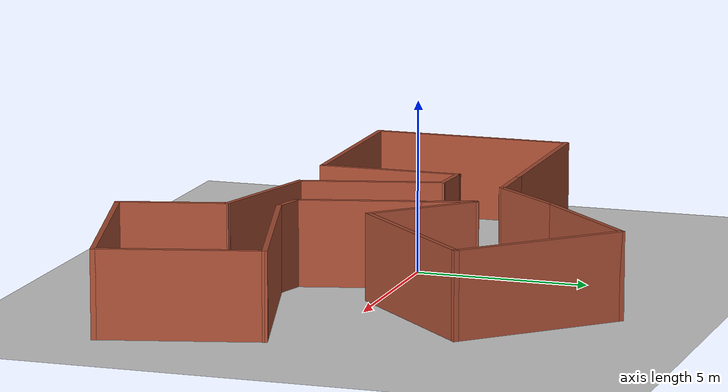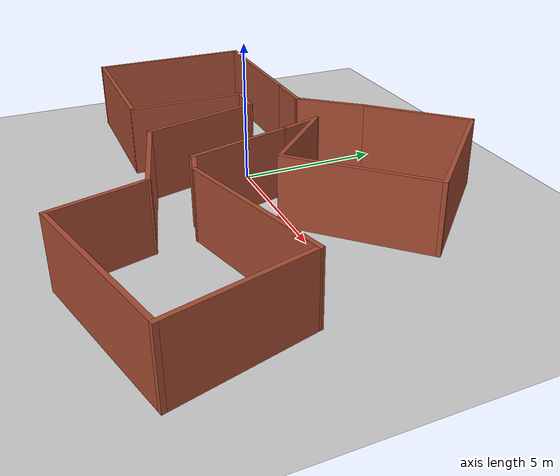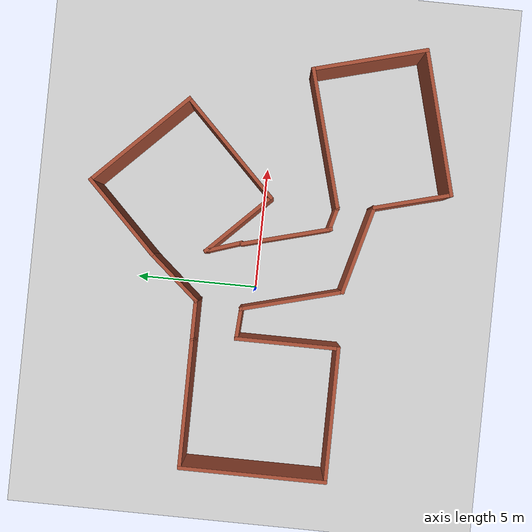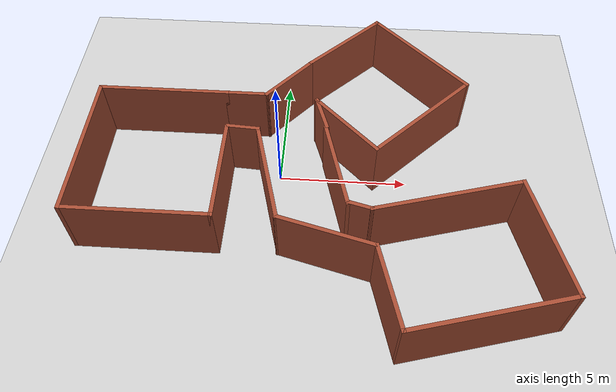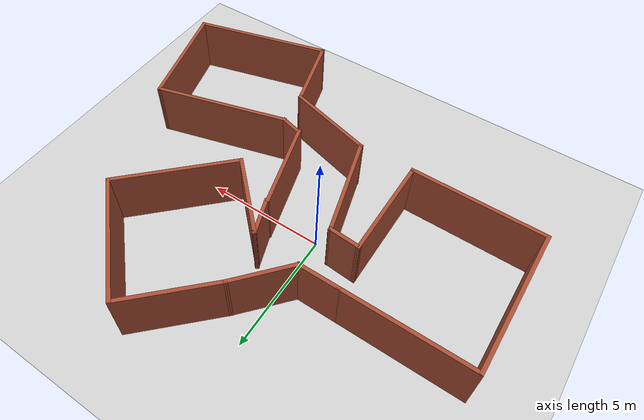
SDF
<sdf version="1.6">
 <world name="default">
  <light name="sun" type="directional">
   <pose>0 0 10 0 -0 0</pose>
   <diffuse>0.8 0.8 0.8 1</diffuse>
   <specular>0.2 0.2 0.2 1</specular>
   <attenuation>
    <range>1000</range>
    <constant>0.9</constant>
    <linear>0.01</linear>
    <quadratic>0.001</quadratic>
   </attenuation>
   <direction>-0.5 0.1 -0.9</direction>
  </light>
  <model name="ground_plane">
   <static>1</static>
   <link name="link">
    <collision name="collision">
     <geometry><plane><normal>0 0 1</normal><size>100 100</size></plane></geometry>
     <surface>
      <contact><collide_bitmask>65535</collide_bitmask></contact>
      <friction><ode><mu>100</mu><mu2>50</mu2></ode></friction>
     </surface>
    </collision>
    <visual name="visual">
     <cast_shadows>0</cast_shadows>
     <geometry><plane><normal>0 0 1</normal><size>100 100</size></plane></geometry>
     <material>
      <script><uri>file://media/materials/scripts/gazebo.material</uri><name>Gazebo/Grey</name></script>
     </material>
    </visual>
   </link>
  </model>
  <gravity>0 0 -9.8</gravity>
  <magnetic_field>6e-06 2.3e-05 -4.2e-05</magnetic_field>
  <atmosphere type="adiabatic"/>
  <physics name="default_physics" default="0" type="ode">
   <max_step_size>0.001</max_step_size>
   <real_time_factor>1</real_time_factor>
   <real_time_update_rate>1000</real_time_update_rate>
  </physics>
  <scene><ambient>0.4 0.4 0.4 1</ambient><background>0.7 0.7 0.7 1</background><shadows>1</shadows></scene>
  <spherical_coordinates>
   <surface_model>EARTH_WGS84</surface_model>
   <latitude_deg>0</latitude_deg>
   <longitude_deg>0</longitude_deg>
   <elevation>0</elevation>
   <heading_deg>0</heading_deg>
  </spherical_coordinates>
  <model name="Untitled">
   <pose>1.39873 -0.231194 0 0 -0 0</pose>
   <link name="Wall_30">
    <collision name="Wall_30_Collision">
     <geometry><box><size>6 0.15 2.5</size></box></geometry>
     <pose>0 0 1.25 0 -0 0</pose>
    </collision>
    <visual name="Wall_30_Visual">
     <pose>0 0 1.25 0 -0 0</pose>
     <geometry><box><size>6 0.15 2.5</size></box></geometry>
     <material>
      <script><uri>file://media/materials/scripts/gazebo.material</uri><name>Gazebo/Bricks</name></script>
      <ambient>1 1 1 1</ambient>
     </material>
     <meta><layer>0</layer></meta>
    </visual>
    <pose>-8.7786 -0.396693 0 0 0 -1.5708</pose>
   </link>
   <link name="Wall_31">
    <collision name="Wall_31_Collision">
     <geometry><box><size>5.5 0.15 2.5</size></box></geometry>
     <pose>0 0 1.25 0 -0 0</pose>
    </collision>
    <visual name="Wall_31_Visual">
     <pose>0 0 1.25 0 -0 0</pose>
     <geometry><box><size>5.5 0.15 2.5</size></box></geometry>
     <material>
      <script><uri>file://media/materials/scripts/gazebo.material</uri><name>Gazebo/Bricks</name></script>
      <ambient>1 1 1 1</ambient>
     </material>
     <meta><layer>0</layer></meta>
    </visual>
    <pose>-6.1036 -3.32169 0 0 -0 0</pose>
   </link>
   <link name="Wall_32">
    <collision name="Wall_32_Collision">
     <geometry><box><size>4.25 0.15 2.5</size></box></geometry>
     <pose>0 0 1.25 0 -0 0</pose>
    </collision>
    <visual name="Wall_32_Visual">
     <pose>0 0 1.25 0 -0 0</pose>
     <geometry><box><size>4.25 0.15 2.5</size></box></geometry>
     <material>
      <script><uri>file://media/materials/scripts/gazebo.material</uri><name>Gazebo/Bricks</name></script>
      <ambient>1 1 1 1</ambient>
     </material>
     <meta><layer>0</layer></meta>
    </visual>
    <pose>-3.4286 -1.27169 0 0 -0 1.5708</pose>
   </link>
   <link name="Wall_34">
    <collision name="Wall_34_Collision">
     <geometry><box><size>4 0.15 2.5</size></box></geometry>
     <pose>0 0 1.25 0 -0 0</pose>
    </collision>
    <visual name="Wall_34_Visual">
     <pose>0 0 1.25 0 -0 0</pose>
     <geometry><box><size>4 0.15 2.5</size></box></geometry>
     <material>
      <script><uri>file://media/materials/scripts/gazebo.material</uri><name>Gazebo/Bricks</name></script>
      <ambient>1 1 1 1</ambient>
     </material>
     <meta><layer>0</layer></meta>
    </visual>
    <pose>0.941528 5.81072 0 0 0 -2.35619</pose>
   </link>
   <link name="Wall_36">
    <collision name="Wall_36_Collision">
     <geometry><box><size>5.25 0.15 2.5</size></box></geometry>
     <pose>0 0 1.25 0 -0 0</pose>
    </collision>
    <visual name="Wall_36_Visual">
     <pose>0 0 1.25 0 -0 0</pose>
     <geometry><box><size>5.25 0.15 2.5</size></box></geometry>
     <material>
      <script><uri>file://media/materials/scripts/gazebo.material</uri><name>Gazebo/Bricks</name></script>
      <ambient>1 1 1 1</ambient>
     </material>
     <meta><layer>0</layer></meta>
    </visual>
    <pose>4.10583 5.36878 0 0 0 -0.785398</pose>
   </link>
   <link name="Wall_37">
    <collision name="Wall_37_Collision">
     <geometry><box><size>5.25 0.15 2.5</size></box></geometry>
     <pose>0 0 1.25 0 -0 0</pose>
    </collision>
    <visual name="Wall_37_Visual">
     <pose>0 0 1.25 0 -0 0</pose>
     <geometry><box><size>5.25 0.15 2.5</size></box></geometry>
     <material>
      <script><uri>file://media/materials/scripts/gazebo.material</uri><name>Gazebo/Bricks</name></script>
      <ambient>1 1 1 1</ambient>
     </material>
     <meta><layer>0</layer></meta>
    </visual>
    <pose>4.10583 1.76254 0 0 0 -2.35619</pose>
   </link>
   <link name="Wall_38">
    <collision name="Wall_38_Collision">
     <geometry><box><size>3.5 0.15 2.5</size></box></geometry>
     <pose>0 0 1.25 0 -0 0</pose>
    </collision>
    <visual name="Wall_38_Visual">
     <pose>0 0 1.25 0 -0 0</pose>
     <geometry><box><size>3.5 0.15 2.5</size></box></geometry>
     <material>
      <script><uri>file://media/materials/scripts/gazebo.material</uri><name>Gazebo/Bricks</name></script>
      <ambient>1 1 1 1</ambient>
     </material>
     <meta><layer>0</layer></meta>
    </visual>
    <pose>1.1183 1.14382 0 0 -0 2.35619</pose>
   </link>
   <link name="Wall_40">
    <collision name="Wall_40_Collision">
     <geometry><box><size>5.78383 0.15 2.5</size></box></geometry>
     <pose>0 0 1.25 0 -0 0</pose>
    </collision>
    <visual name="Wall_40_Visual">
     <pose>0 0 1.25 0 -0 0</pose>
     <geometry><box><size>5.78383 0.15 2.5</size></box></geometry>
     <material>
      <script><uri>file://media/materials/scripts/gazebo.material</uri><name>Gazebo/Bricks</name></script>
      <ambient>1 1 1 1</ambient>
     </material>
     <meta><layer>0</layer></meta>
    </visual>
    <pose>4.85615 -1.97953 0 0 -0 0.26978</pose>
   </link>
   <link name="Wall_41">
    <collision name="Wall_41_Collision">
     <geometry><box><size>4.75 0.15 2.5</size></box></geometry>
     <pose>0 0 1.25 0 -0 0</pose>
    </collision>
    <visual name="Wall_41_Visual">
     <pose>0 0 1.25 0 -0 0</pose>
     <geometry><box><size>4.75 0.15 2.5</size></box></geometry>
     <material>
      <script><uri>file://media/materials/scripts/gazebo.material</uri><name>Gazebo/Bricks</name></script>
      <ambient>1 1 1 1</ambient>
     </material>
     <meta><layer>0</layer></meta>
    </visual>
    <pose>8.16646 -3.45039 0 0 0 -1.309</pose>
   </link>
   <link name="Wall_42">
    <collision name="Wall_42_Collision">
     <geometry><box><size>6 0.15 2.5</size></box></geometry>
     <pose>0 0 1.25 0 -0 0</pose>
    </collision>
    <visual name="Wall_42_Visual">
     <pose>0 0 1.25 0 -0 0</pose>
     <geometry><box><size>6 0.15 2.5</size></box></geometry>
     <material>
      <script><uri>file://media/materials/scripts/gazebo.material</uri><name>Gazebo/Bricks</name></script>
      <ambient>1 1 1 1</ambient>
     </material>
     <meta><layer>0</layer></meta>
    </visual>
    <pose>5.93641 -6.42907 0 0 0 -2.87979</pose>
   </link>
   <link name="Wall_43">
    <collision name="Wall_43_Collision">
     <geometry><box><size>3.25 0.15 2.5</size></box></geometry>
     <pose>0 0 1.25 0 -0 0</pose>
    </collision>
    <visual name="Wall_43_Visual">
     <pose>0 0 1.25 0 -0 0</pose>
     <geometry><box><size>3.25 0.15 2.5</size></box></geometry>
     <material>
      <script><uri>file://media/materials/scripts/gazebo.material</uri><name>Gazebo/Bricks</name></script>
      <ambient>1 1 1 1</ambient>
     </material>
     <meta><layer>0</layer></meta>
    </visual>
    <pose>2.70991 -5.68893 0 0 -0 1.8326</pose>
   </link>
   <link name="Wall_45">
    <collision name="Wall_45_Collision">
     <geometry><box><size>5.25 0.15 2.5</size></box></geometry>
     <pose>0 0 1.25 0 -0 0</pose>
    </collision>
    <visual name="Wall_45_Visual">
     <pose>0 0 1.25 0 -0 0</pose>
     <geometry><box><size>5.25 0.15 2.5</size></box></geometry>
     <material>
      <script><uri>file://media/materials/scripts/gazebo.material</uri><name>Gazebo/Bricks</name></script>
      <ambient>1 1 1 1</ambient>
     </material>
     <meta><layer>0</layer></meta>
    </visual>
    <pose>-6.2286 2.52831 0 0 -0 0</pose>
   </link>
   <link name="Wall_47">
    <collision name="Wall_47_Collision">
     <geometry><box><size>3.75 0.15 2.5</size></box></geometry>
     <pose>0 0 1.25 0 -0 0</pose>
    </collision>
    <visual name="Wall_47_Visual">
     <pose>0 0 1.25 0 -0 0</pose>
     <geometry><box><size>3.75 0.15 2.5</size></box></geometry>
     <material>
      <script><uri>file://media/materials/scripts/gazebo.material</uri><name>Gazebo/Bricks</name></script>
      <ambient>1 1 1 1</ambient>
     </material>
     <meta><layer>0</layer></meta>
    </visual>
    <pose>0.570074 -3.72587 0 0 -0 2.87979</pose>
   </link>
   <link name="Wall_48">
    <collision name="Wall_48_Collision">
     <geometry><box><size>4.25 0.15 2.5</size></box></geometry>
     <pose>0 0 1.25 0 -0 0</pose>
    </collision>
    <visual name="Wall_48_Visual">
     <pose>0 0 1.25 0 -0 0</pose>
     <geometry><box><size>4.25 0.15 2.5</size></box></geometry>
     <material>
      <script><uri>file://media/materials/scripts/gazebo.material</uri><name>Gazebo/Bricks</name></script>
      <ambient>1 1 1 1</ambient>
     </material>
     <meta><layer>0</layer></meta>
    </visual>
    <pose>-1.69917 -1.27985 0 0 -0 1.8326</pose>
   </link>
   <link name="Wall_49">
    <collision name="Wall_49_Collision">
     <geometry><box><size>1.35139 0.15 2.5</size></box></geometry>
     <pose>0 0 1.25 0 -0 0</pose>
    </collision>
    <visual name="Wall_49_Visual">
     <pose>0 0 1.25 0 -0 0</pose>
     <geometry><box><size>1.35139 0.15 2.5</size></box></geometry>
     <material>
      <script><uri>file://media/materials/scripts/gazebo.material</uri><name>Gazebo/Bricks</name></script>
      <ambient>1 1 1 1</ambient>
     </material>
     <meta><layer>0</layer></meta>
    </visual>
    <pose>-2.82918 0.739304 0 0 -0 3.07662</pose>
   </link>
   <link name="Wall_51">
    <collision name="Wall_51_Collision">
     <geometry><box><size>1 0.15 2.5</size></box></geometry>
     <pose>0 0 1.25 0 -0 0</pose>
    </collision>
    <visual name="Wall_51_Visual">
     <pose>0 0 1.25 0 -0 0</pose>
     <geometry><box><size>1 0.15 2.5</size></box></geometry>
     <material>
      <script><uri>file://media/materials/scripts/gazebo.material</uri><name>Gazebo/Bricks</name></script>
      <ambient>1 1 1 1</ambient>
     </material>
     <meta><layer>0</layer></meta>
    </visual>
    <pose>1.73061 -2.62029 0 0 -0 2.87979</pose>
   </link>
   <link name="Wall_52">
    <collision name="Wall_52_Collision">
     <geometry><box><size>3.75 0.15 2.5</size></box></geometry>
     <pose>0 0 1.25 0 -0 0</pose>
    </collision>
    <visual name="Wall_52_Visual">
     <pose>0 0 1.25 0 -0 0</pose>
     <geometry><box><size>3.75 0.15 2.5</size></box></geometry>
     <material>
      <script><uri>file://media/materials/scripts/gazebo.material</uri><name>Gazebo/Bricks</name></script>
      <ambient>1 1 1 1</ambient>
     </material>
     <meta><layer>0</layer></meta>
    </visual>
    <pose>0.819034 -0.806803 0 0 -0 1.8326</pose>
   </link>
   <link name="Wall_53">
    <collision name="Wall_53_Collision">
     <geometry><box><size>1.58503 0.15 2.5</size></box></geometry>
     <pose>0 0 1.25 0 -0 0</pose>
    </collision>
    <visual name="Wall_53_Visual">
     <pose>0 0 1.25 0 -0 0</pose>
     <geometry><box><size>1.58503 0.15 2.5</size></box></geometry>
     <material>
      <script><uri>file://media/materials/scripts/gazebo.material</uri><name>Gazebo/Bricks</name></script>
      <ambient>1 1 1 1</ambient>
     </material>
     <meta><layer>0</layer></meta>
    </visual>
    <pose>0.161119 1.64763 0 0 -0 1.89302</pose>
   </link>
   <link name="Wall_55">
    <collision name="Wall_55_Collision">
     <geometry><box><size>1.75 0.15 2.5</size></box></geometry>
     <pose>0 0 1.25 0 -0 0</pose>
    </collision>
    <visual name="Wall_55_Visual">
     <pose>0 0 1.25 0 -0 0</pose>
     <geometry><box><size>1.75 0.15 2.5</size></box></geometry>
     <material>
      <script><uri>file://media/materials/scripts/gazebo.material</uri><name>Gazebo/Bricks</name></script>
      <ambient>1 1 1 1</ambient>
     </material>
     <meta><layer>0</layer></meta>
    </visual>
    <pose>-2.8786 2.52831 0 0 -0 0</pose>
   </link>
   <link name="Wall_56">
    <collision name="Wall_56_Collision">
     <geometry><box><size>2.68836 0.15 2.5</size></box></geometry>
     <pose>0 0 1.25 0 -0 0</pose>
    </collision>
    <visual name="Wall_56_Visual">
     <pose>0 0 1.25 0 -0 0</pose>
     <geometry><box><size>2.68836 0.15 2.5</size></box></geometry>
     <material>
      <script><uri>file://media/materials/scripts/gazebo.material</uri><name>Gazebo/Bricks</name></script>
      <ambient>1 1 1 1</ambient>
     </material>
     <meta><layer>0</layer></meta>
    </visual>
    <pose>-1.24913 3.48892 0 0 -0 0.858528</pose>
   </link>
   <static>1</static>
  </model>
 </world>
</sdf>
